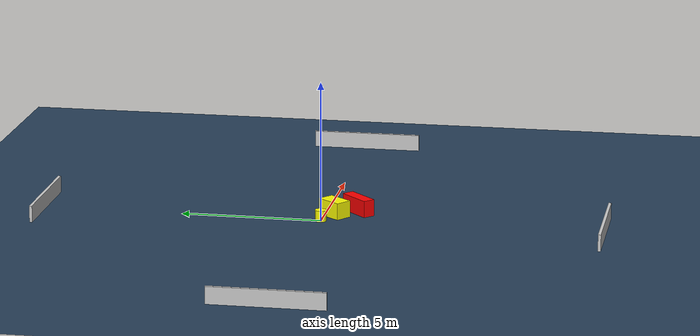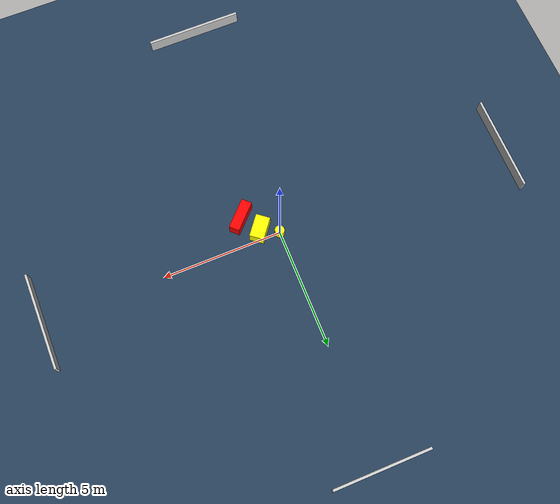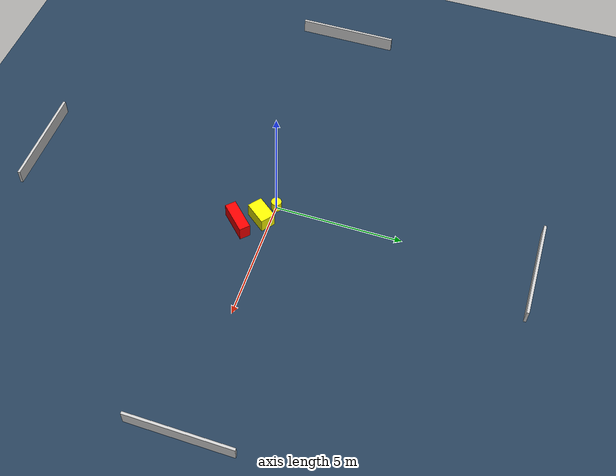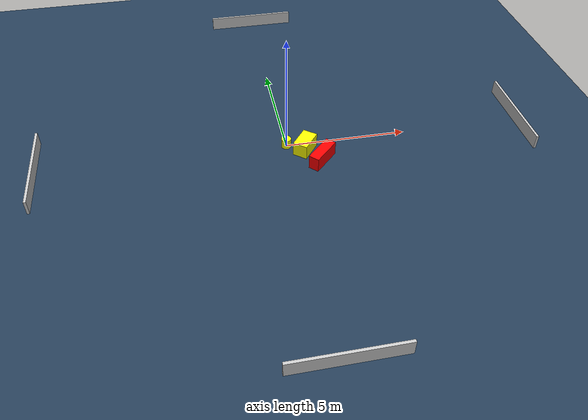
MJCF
<?xml version="1.0" ?>
<mujoco model="generated_environment">
  <option timestep="0.01" integrator="RK4" cone="elliptic"/>
  <default>
    <geom density="1"/>
  </default>
  <asset>
    <texture builtin="gradient" height="3072" name="skybox" rgb1="0.3 0.5 0.7" rgb2="0 0 0" type="skybox" width="512"/>
    <texture builtin="checker" height="300" name="groundplane" rgb1="0.2 0.3 0.4" rgb2="0.1 0.2 0.3" type="2d" width="300"/>
    <material name="groundplane" reflectance="0.2" texrepeat="5 5" texture="groundplane"/>
  </asset>
  <worldbody>
    <light dir="0 0 -1" directional="true" pos="0 0 1.5"/>
    <geom condim="3" friction="0.5 0.005 0.001" material="groundplane" name="floor" pos="0 0 0" size="0 0 0.05" type="plane"/>
    <body name="walls">
      <geom name="wall_1" condim="4" pos="-10.0 0.0 0.3" rgba="0.800000011920929 0.800000011920929 0.800000011920929 1.0" size="0.05 2.0 0.3" type="box"/>
      <geom name="wall_2" condim="4" pos="10.0 0.0 0.3" rgba="0.800000011920929 0.800000011920929 0.800000011920929 1.0" size="0.05 2.0 0.3" type="box"/>
      <geom name="wall_3" condim="4" pos="0.0 -10.0 0.3" rgba="0.800000011920929 0.800000011920929 0.800000011920929 1.0" size="2.0 0.05 0.3" type="box"/>
      <geom name="wall_4" condim="4" pos="0.0 10.0 0.3" rgba="0.800000011920929 0.800000011920929 0.800000011920929 1.0" size="2.0 0.05 0.3" type="box"/>
    </body>
    <body name="robot">
      <joint name="joint_x" type="slide" pos="0 0 0" axis="1 0 0"/>
      <joint name="joint_y" type="slide" pos="0 0 0" axis="0 1 0"/>
      <geom name="robot" type="cylinder" pos="0.0 0.0 0.2" size="0.2 0.2 0.0" mass="5.0" friction="1.0 0.005 0.0001" condim="4" rgba="1.0 1.0 0.0 1.0"/>
    </body>
    <body name="obstacle_1_movable">
      <geom name="obstacle_1_movable" condim="4" pos="0.7101656305524745 -0.3715182410709486 0.3" euler="0 0 141.88922285021965" friction="0.0 0.005 0.001" rgba="1.0 1.0 0.0 1.0" size="0.29914331095181995 0.4777659539718038 0.3" type="box" mass="0.1"/>
      <joint type="free"/>
    </body>
    <body name="obstacle_2_static">
      <geom name="obstacle_2_static" condim="4" pos="1.2486719210623018 -1.1373029485279647 0.3" euler="0 0 45.1933162028857" friction="0.0 0.005 0.001" rgba="1.0 0.0 0.0 1.0" size="0.644937549946146 0.21665822836053272 0.3" type="box"/>
    </body>
  </worldbody>
  <actuator>
    <motor name="actuator_x" joint="joint_x" gear="1" ctrlrange="-1 1"/>
    <motor name="actuator_y" joint="joint_y" gear="1" ctrlrange="-1 1"/>
  </actuator>
</mujoco>
